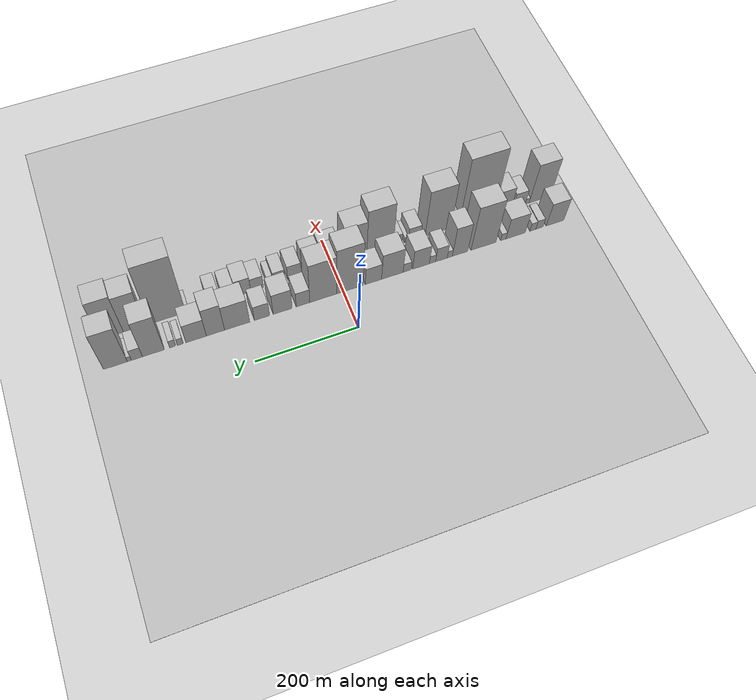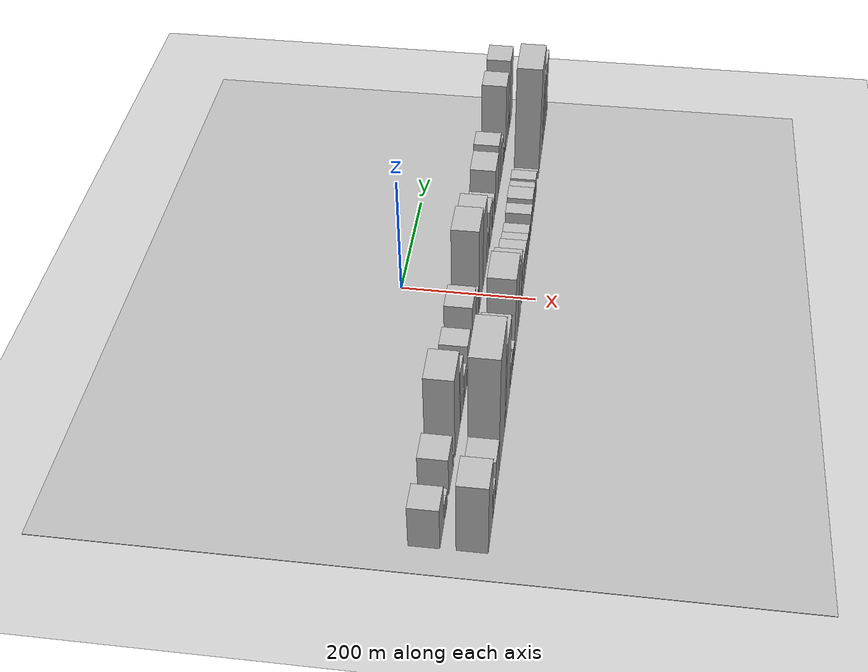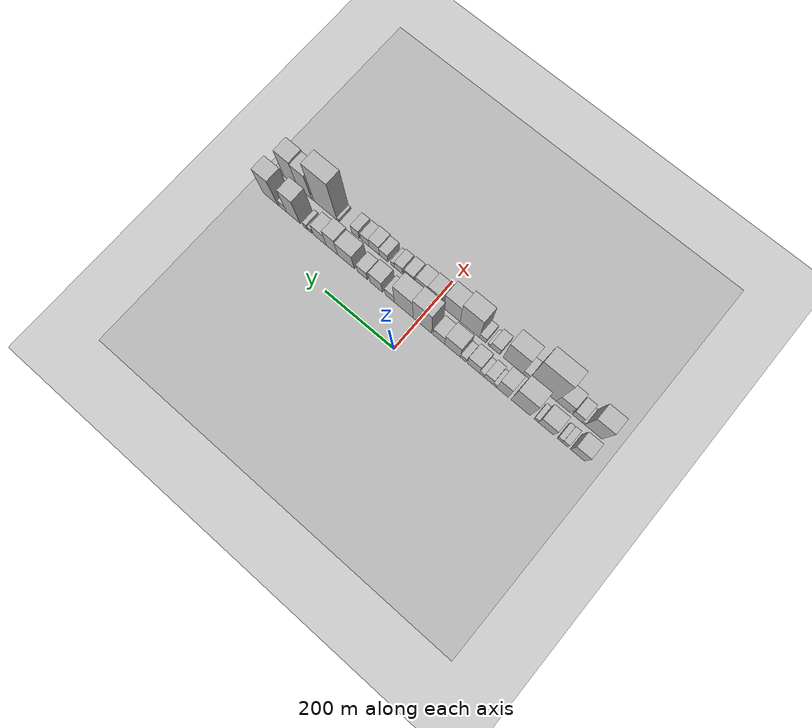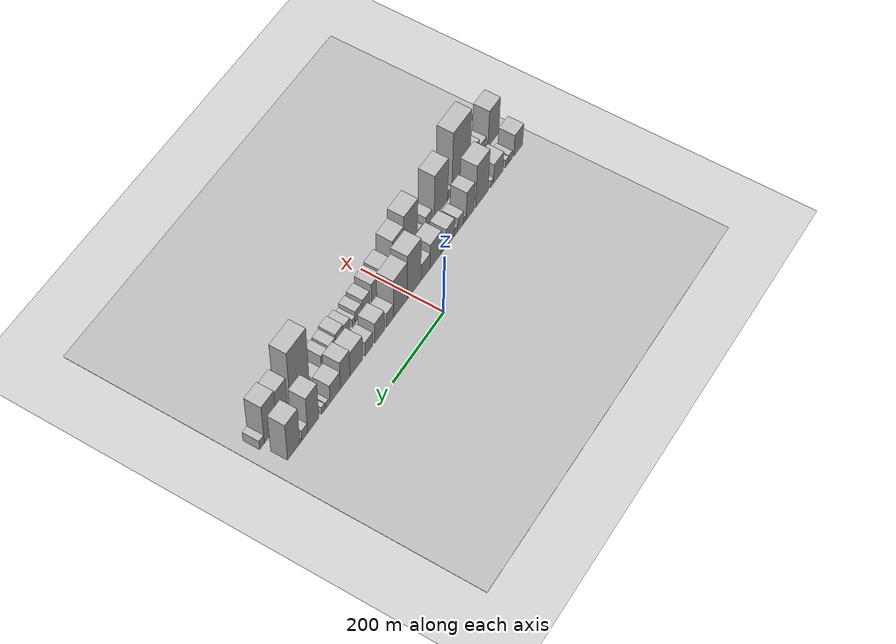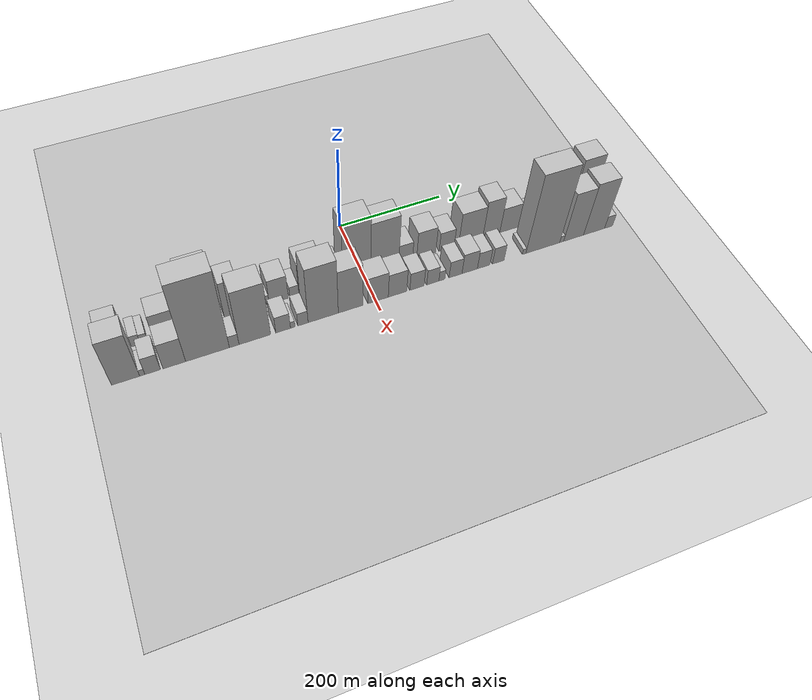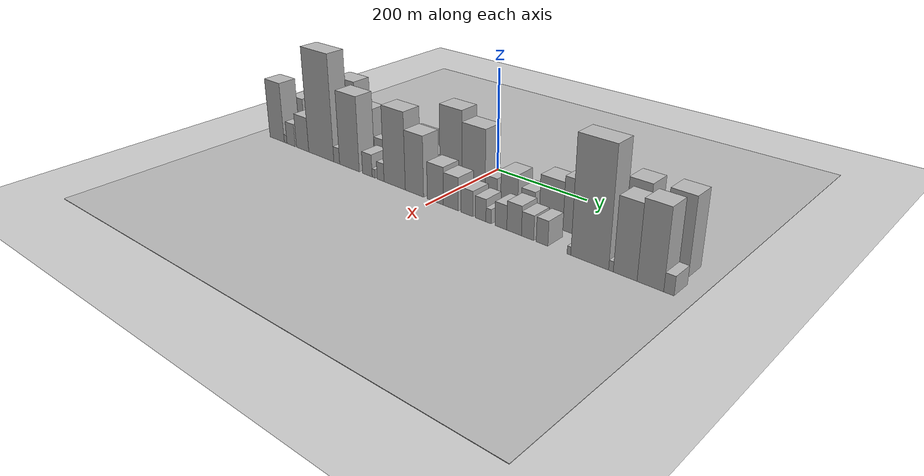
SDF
<sdf version="1.6">
 <world name="default">
  <include><name>ground_plane_1</name><uri>model://HANNAS_ground_plane</uri></include>
  <include>
   <name>ground_plane_2</name>
   <uri>model://HANNAS_ground_plane</uri>
   <pose>100 0 0  0 0 0</pose>
  </include>
  <model name="building_1">
   <static>1</static>
   <pose>100.0000 -440.9471 0 0.000000 0.000000 0.000000</pose>
   <link name="link">
    <pose>0 0 37.50 0 0 0</pose>
    <collision name="collision"><geometry><box><size>40.0000 38.1058 75.0000</size></box></geometry></collision>
    <visual name="visual">
     <cast_shadows>0</cast_shadows>
     <geometry><box><size>40.0000 38.1058 75.0000</size></box></geometry>
     <material>
      <script>
       <uri>model://HANNAS_wall/materials/scripts</uri>
       <uri>model://HANNAS_wall/materials/textures</uri>
       <name>vrc/HANNAS_wall</name>
      </script>
     </material>
    </visual>
   </link>
  </model>
  <model name="building_2">
   <static>1</static>
   <pose>100.0000 -407.1642 0 0.000000 0.000000 0.000000</pose>
   <link name="link">
    <pose>0 0 15.00 0 0 0</pose>
    <collision name="collision"><geometry><box><size>40.0000 15.4600 30.0000</size></box></geometry></collision>
    <visual name="visual">
     <cast_shadows>0</cast_shadows>
     <geometry><box><size>40.0000 15.4600 30.0000</size></box></geometry>
     <material>
      <script>
       <uri>model://HANNAS_wall/materials/scripts</uri>
       <uri>model://HANNAS_wall/materials/textures</uri>
       <name>vrc/HANNAS_wall</name>
      </script>
     </material>
    </visual>
   </link>
  </model>
  <model name="building_3">
   <static>1</static>
   <pose>100.0000 -393.0860 0 0.000000 0.000000 0.000000</pose>
   <link name="link">
    <pose>0 0 13.50 0 0 0</pose>
    <collision name="collision"><geometry><box><size>40.0000 12.6964 27.0000</size></box></geometry></collision>
    <visual name="visual">
     <cast_shadows>0</cast_shadows>
     <geometry><box><size>40.0000 12.6964 27.0000</size></box></geometry>
     <material>
      <script>
       <uri>model://HANNAS_wall/materials/scripts</uri>
       <uri>model://HANNAS_wall/materials/textures</uri>
       <name>vrc/HANNAS_wall</name>
      </script>
     </material>
    </visual>
   </link>
  </model>
  <model name="building_4">
   <static>1</static>
   <pose>100.0000 -356.1341 0 0.000000 0.000000 0.000000</pose>
   <link name="link">
    <pose>0 0 34.50 0 0 0</pose>
    <collision name="collision"><geometry><box><size>40.0000 41.2074 69.0000</size></box></geometry></collision>
    <visual name="visual">
     <cast_shadows>0</cast_shadows>
     <geometry><box><size>40.0000 41.2074 69.0000</size></box></geometry>
     <material>
      <script>
       <uri>model://HANNAS_wall/materials/scripts</uri>
       <uri>model://HANNAS_wall/materials/textures</uri>
       <name>vrc/HANNAS_wall</name>
      </script>
     </material>
    </visual>
   </link>
  </model>
  <model name="building_5">
   <static>1</static>
   <pose>100.0000 -329.7776 0 0.000000 0.000000 0.000000</pose>
   <link name="link">
    <pose>0 0 12.00 0 0 0</pose>
    <collision name="collision"><geometry><box><size>40.0000 11.5056 24.0000</size></box></geometry></collision>
    <visual name="visual">
     <cast_shadows>0</cast_shadows>
     <geometry><box><size>40.0000 11.5056 24.0000</size></box></geometry>
     <material>
      <script>
       <uri>model://HANNAS_wall/materials/scripts</uri>
       <uri>model://HANNAS_wall/materials/textures</uri>
       <name>vrc/HANNAS_wall</name>
      </script>
     </material>
    </visual>
   </link>
  </model>
  <model name="building_6">
   <static>1</static>
   <pose>100.0000 -287.7124 0 0.000000 0.000000 0.000000</pose>
   <link name="link">
    <pose>0 0 73.50 0 0 0</pose>
    <collision name="collision"><geometry><box><size>40.0000 52.6247 147.0000</size></box></geometry></collision>
    <visual name="visual">
     <cast_shadows>0</cast_shadows>
     <geometry><box><size>40.0000 52.6247 147.0000</size></box></geometry>
     <material>
      <script>
       <uri>model://HANNAS_wall/materials/scripts</uri>
       <uri>model://HANNAS_wall/materials/textures</uri>
       <name>vrc/HANNAS_wall</name>
      </script>
     </material>
    </visual>
   </link>
  </model>
  <model name="building_7">
   <static>1</static>
   <pose>100.0000 -238.3143 0 0.000000 0.000000 0.000000</pose>
   <link name="link">
    <pose>0 0 49.50 0 0 0</pose>
    <collision name="collision"><geometry><box><size>40.0000 32.1715 99.0000</size></box></geometry></collision>
    <visual name="visual">
     <cast_shadows>0</cast_shadows>
     <geometry><box><size>40.0000 32.1715 99.0000</size></box></geometry>
     <material>
      <script>
       <uri>model://HANNAS_wall/materials/scripts</uri>
       <uri>model://HANNAS_wall/materials/textures</uri>
       <name>vrc/HANNAS_wall</name>
      </script>
     </material>
    </visual>
   </link>
  </model>
  <model name="building_8">
   <static>1</static>
   <pose>100.0000 -216.9124 0 0.000000 0.000000 0.000000</pose>
   <link name="link">
    <pose>0 0 12.00 0 0 0</pose>
    <collision name="collision"><geometry><box><size>40.0000 10.6324 24.0000</size></box></geometry></collision>
    <visual name="visual">
     <cast_shadows>0</cast_shadows>
     <geometry><box><size>40.0000 10.6324 24.0000</size></box></geometry>
     <material>
      <script>
       <uri>model://HANNAS_wall/materials/scripts</uri>
       <uri>model://HANNAS_wall/materials/textures</uri>
       <name>vrc/HANNAS_wall</name>
      </script>
     </material>
    </visual>
   </link>
  </model>
  <model name="building_9">
   <static>1</static>
   <pose>100.0000 -199.5658 0 0.000000 0.000000 0.000000</pose>
   <link name="link">
    <pose>0 0 24.00 0 0 0</pose>
    <collision name="collision"><geometry><box><size>40.0000 24.0608 48.0000</size></box></geometry></collision>
    <visual name="visual">
     <cast_shadows>0</cast_shadows>
     <geometry><box><size>40.0000 24.0608 48.0000</size></box></geometry>
     <material>
      <script>
       <uri>model://HANNAS_wall/materials/scripts</uri>
       <uri>model://HANNAS_wall/materials/textures</uri>
       <name>vrc/HANNAS_wall</name>
      </script>
     </material>
    </visual>
   </link>
  </model>
  <model name="building_10">
   <static>1</static>
   <pose>100.0000 -180.9610 0 0.000000 0.000000 0.000000</pose>
   <link name="link">
    <pose>0 0 13.50 0 0 0</pose>
    <collision name="collision"><geometry><box><size>40.0000 13.1488 27.0000</size></box></geometry></collision>
    <visual name="visual">
     <cast_shadows>0</cast_shadows>
     <geometry><box><size>40.0000 13.1488 27.0000</size></box></geometry>
     <material>
      <script>
       <uri>model://HANNAS_wall/materials/scripts</uri>
       <uri>model://HANNAS_wall/materials/textures</uri>
       <name>vrc/HANNAS_wall</name>
      </script>
     </material>
    </visual>
   </link>
  </model>
  <model name="building_11">
   <static>1</static>
   <pose>100.0000 -157.1860 0 0.000000 0.000000 0.000000</pose>
   <link name="link">
    <pose>0 0 33.00 0 0 0</pose>
    <collision name="collision"><geometry><box><size>40.0000 34.4013 66.0000</size></box></geometry></collision>
    <visual name="visual">
     <cast_shadows>0</cast_shadows>
     <geometry><box><size>40.0000 34.4013 66.0000</size></box></geometry>
     <material>
      <script>
       <uri>model://HANNAS_wall/materials/scripts</uri>
       <uri>model://HANNAS_wall/materials/textures</uri>
       <name>vrc/HANNAS_wall</name>
      </script>
     </material>
    </visual>
   </link>
  </model>
  <model name="building_12">
   <static>1</static>
   <pose>100.0000 -128.7303 0 0.000000 0.000000 0.000000</pose>
   <link name="link">
    <pose>0 0 15.00 0 0 0</pose>
    <collision name="collision"><geometry><box><size>40.0000 16.5101 30.0000</size></box></geometry></collision>
    <visual name="visual">
     <cast_shadows>0</cast_shadows>
     <geometry><box><size>40.0000 16.5101 30.0000</size></box></geometry>
     <material>
      <script>
       <uri>model://HANNAS_wall/materials/scripts</uri>
       <uri>model://HANNAS_wall/materials/textures</uri>
       <name>vrc/HANNAS_wall</name>
      </script>
     </material>
    </visual>
   </link>
  </model>
  <model name="building_13">
   <static>1</static>
   <pose>100.0000 -98.5221 0 0.000000 0.000000 0.000000</pose>
   <link name="link">
    <pose>0 0 43.50 0 0 0</pose>
    <collision name="collision"><geometry><box><size>40.0000 43.9062 87.0000</size></box></geometry></collision>
    <visual name="visual">
     <cast_shadows>0</cast_shadows>
     <geometry><box><size>40.0000 43.9062 87.0000</size></box></geometry>
     <material>
      <script>
       <uri>model://HANNAS_wall/materials/scripts</uri>
       <uri>model://HANNAS_wall/materials/textures</uri>
       <name>vrc/HANNAS_wall</name>
      </script>
     </material>
    </visual>
   </link>
  </model>
  <model name="building_14">
   <static>1</static>
   <pose>100.0000 -60.0770 0 0.000000 0.000000 0.000000</pose>
   <link name="link">
    <pose>0 0 28.50 0 0 0</pose>
    <collision name="collision"><geometry><box><size>40.0000 32.9840 57.0000</size></box></geometry></collision>
    <visual name="visual">
     <cast_shadows>0</cast_shadows>
     <geometry><box><size>40.0000 32.9840 57.0000</size></box></geometry>
     <material>
      <script>
       <uri>model://HANNAS_wall/materials/scripts</uri>
       <uri>model://HANNAS_wall/materials/textures</uri>
       <name>vrc/HANNAS_wall</name>
      </script>
     </material>
    </visual>
   </link>
  </model>
  <model name="building_15">
   <static>1</static>
   <pose>100.0000 -13.1559 0 0.000000 0.000000 0.000000</pose>
   <link name="link">
    <pose>0 0 78.00 0 0 0</pose>
    <collision name="collision"><geometry><box><size>40.0000 52.8582 156.0000</size></box></geometry></collision>
    <visual name="visual">
     <cast_shadows>0</cast_shadows>
     <geometry><box><size>40.0000 52.8582 156.0000</size></box></geometry>
     <material>
      <script>
       <uri>model://HANNAS_wall/materials/scripts</uri>
       <uri>model://HANNAS_wall/materials/textures</uri>
       <name>vrc/HANNAS_wall</name>
      </script>
     </material>
    </visual>
   </link>
  </model>
  <model name="building_16">
   <static>1</static>
   <pose>100.0000 40.2340 0 0.000000 0.000000 0.000000</pose>
   <link name="link">
    <pose>0 0 67.50 0 0 0</pose>
    <collision name="collision"><geometry><box><size>40.0000 53.9217 135.0000</size></box></geometry></collision>
    <visual name="visual">
     <cast_shadows>0</cast_shadows>
     <geometry><box><size>40.0000 53.9217 135.0000</size></box></geometry>
     <material>
      <script>
       <uri>model://HANNAS_wall/materials/scripts</uri>
       <uri>model://HANNAS_wall/materials/textures</uri>
       <name>vrc/HANNAS_wall</name>
      </script>
     </material>
    </visual>
   </link>
  </model>
  <model name="building_17">
   <static>1</static>
   <pose>100.0000 80.6268 0 0.000000 0.000000 0.000000</pose>
   <link name="link">
    <pose>0 0 25.50 0 0 0</pose>
    <collision name="collision"><geometry><box><size>40.0000 26.8638 51.0000</size></box></geometry></collision>
    <visual name="visual">
     <cast_shadows>0</cast_shadows>
     <geometry><box><size>40.0000 26.8638 51.0000</size></box></geometry>
     <material>
      <script>
       <uri>model://HANNAS_wall/materials/scripts</uri>
       <uri>model://HANNAS_wall/materials/textures</uri>
       <name>vrc/HANNAS_wall</name>
      </script>
     </material>
    </visual>
   </link>
  </model>
  <model name="building_18">
   <static>1</static>
   <pose>100.0000 120.6621 0 0.000000 0.000000 0.000000</pose>
   <link name="link">
    <pose>0 0 36.00 0 0 0</pose>
    <collision name="collision"><geometry><box><size>40.0000 37.2068 72.0000</size></box></geometry></collision>
    <visual name="visual">
     <cast_shadows>0</cast_shadows>
     <geometry><box><size>40.0000 37.2068 72.0000</size></box></geometry>
     <material>
      <script>
       <uri>model://HANNAS_wall/materials/scripts</uri>
       <uri>model://HANNAS_wall/materials/textures</uri>
       <name>vrc/HANNAS_wall</name>
      </script>
     </material>
    </visual>
   </link>
  </model>
  <model name="building_19">
   <static>1</static>
   <pose>100.0000 161.0358 0 0.000000 0.000000 0.000000</pose>
   <link name="link">
    <pose>0 0 25.50 0 0 0</pose>
    <collision name="collision"><geometry><box><size>40.0000 29.5407 51.0000</size></box></geometry></collision>
    <visual name="visual">
     <cast_shadows>0</cast_shadows>
     <geometry><box><size>40.0000 29.5407 51.0000</size></box></geometry>
     <material>
      <script>
       <uri>model://HANNAS_wall/materials/scripts</uri>
       <uri>model://HANNAS_wall/materials/textures</uri>
       <name>vrc/HANNAS_wall</name>
      </script>
     </material>
    </visual>
   </link>
  </model>
  <model name="building_20">
   <static>1</static>
   <pose>100.0000 209.0318 0 0.000000 0.000000 0.000000</pose>
   <link name="link">
    <pose>0 0 43.50 0 0 0</pose>
    <collision name="collision"><geometry><box><size>40.0000 48.4513 87.0000</size></box></geometry></collision>
    <visual name="visual">
     <cast_shadows>0</cast_shadows>
     <geometry><box><size>40.0000 48.4513 87.0000</size></box></geometry>
     <material>
      <script>
       <uri>model://HANNAS_wall/materials/scripts</uri>
       <uri>model://HANNAS_wall/materials/textures</uri>
       <name>vrc/HANNAS_wall</name>
      </script>
     </material>
    </visual>
   </link>
  </model>
  <model name="building_21">
   <static>1</static>
   <pose>100.0000 250.5919 0 0.000000 0.000000 0.000000</pose>
   <link name="link">
    <pose>0 0 49.50 0 0 0</pose>
    <collision name="collision"><geometry><box><size>40.0000 34.6688 99.0000</size></box></geometry></collision>
    <visual name="visual">
     <cast_shadows>0</cast_shadows>
     <geometry><box><size>40.0000 34.6688 99.0000</size></box></geometry>
     <material>
      <script>
       <uri>model://HANNAS_wall/materials/scripts</uri>
       <uri>model://HANNAS_wall/materials/textures</uri>
       <name>vrc/HANNAS_wall</name>
      </script>
     </material>
    </visual>
   </link>
  </model>
  <model name="building_22">
   <static>1</static>
   <pose>100.0000 287.4327 0 0.000000 0.000000 0.000000</pose>
   <link name="link">
    <pose>0 0 33.00 0 0 0</pose>
    <collision name="collision"><geometry><box><size>40.0000 39.0128 66.0000</size></box></geometry></collision>
    <visual name="visual">
     <cast_shadows>0</cast_shadows>
     <geometry><box><size>40.0000 39.0128 66.0000</size></box></geometry>
     <material>
      <script>
       <uri>model://HANNAS_wall/materials/scripts</uri>
       <uri>model://HANNAS_wall/materials/textures</uri>
       <name>vrc/HANNAS_wall</name>
      </script>
     </material>
    </visual>
   </link>
  </model>
  <model name="building_23">
   <static>1</static>
   <pose>100.0000 317.5218 0 0.000000 0.000000 0.000000</pose>
   <link name="link">
    <pose>0 0 12.00 0 0 0</pose>
    <collision name="collision"><geometry><box><size>40.0000 11.1654 24.0000</size></box></geometry></collision>
    <visual name="visual">
     <cast_shadows>0</cast_shadows>
     <geometry><box><size>40.0000 11.1654 24.0000</size></box></geometry>
     <material>
      <script>
       <uri>model://HANNAS_wall/materials/scripts</uri>
       <uri>model://HANNAS_wall/materials/textures</uri>
       <name>vrc/HANNAS_wall</name>
      </script>
     </material>
    </visual>
   </link>
  </model>
  <model name="building_24">
   <static>1</static>
   <pose>100.0000 331.7526 0 0.000000 0.000000 0.000000</pose>
   <link name="link">
    <pose>0 0 13.50 0 0 0</pose>
    <collision name="collision"><geometry><box><size>40.0000 11.2961 27.0000</size></box></geometry></collision>
    <visual name="visual">
     <cast_shadows>0</cast_shadows>
     <geometry><box><size>40.0000 11.2961 27.0000</size></box></geometry>
     <material>
      <script>
       <uri>model://HANNAS_wall/materials/scripts</uri>
       <uri>model://HANNAS_wall/materials/textures</uri>
       <name>vrc/HANNAS_wall</name>
      </script>
     </material>
    </visual>
   </link>
  </model>
  <model name="building_25">
   <static>1</static>
   <pose>100.0000 367.8742 0 0.000000 0.000000 0.000000</pose>
   <link name="link">
    <pose>0 0 66.00 0 0 0</pose>
    <collision name="collision"><geometry><box><size>40.0000 40.9471 132.0000</size></box></geometry></collision>
    <visual name="visual">
     <cast_shadows>0</cast_shadows>
     <geometry><box><size>40.0000 40.9471 132.0000</size></box></geometry>
     <material>
      <script>
       <uri>model://HANNAS_wall/materials/scripts</uri>
       <uri>model://HANNAS_wall/materials/textures</uri>
       <name>vrc/HANNAS_wall</name>
      </script>
     </material>
    </visual>
   </link>
  </model>
  <model name="building_26">
   <static>1</static>
   <pose>100.0000 398.6790 0 0.000000 0.000000 0.000000</pose>
   <link name="link">
    <pose>0 0 19.50 0 0 0</pose>
    <collision name="collision"><geometry><box><size>40.0000 20.6626 39.0000</size></box></geometry></collision>
    <visual name="visual">
     <cast_shadows>0</cast_shadows>
     <geometry><box><size>40.0000 20.6626 39.0000</size></box></geometry>
     <material>
      <script>
       <uri>model://HANNAS_wall/materials/scripts</uri>
       <uri>model://HANNAS_wall/materials/textures</uri>
       <name>vrc/HANNAS_wall</name>
      </script>
     </material>
    </visual>
   </link>
  </model>
  <model name="building_27">
   <static>1</static>
   <pose>100.0000 412.6578 0 0.000000 0.000000 0.000000</pose>
   <link name="link">
    <pose>0 0 9.00 0 0 0</pose>
    <collision name="collision"><geometry><box><size>40.0000 7.2950 18.0000</size></box></geometry></collision>
    <visual name="visual">
     <cast_shadows>0</cast_shadows>
     <geometry><box><size>40.0000 7.2950 18.0000</size></box></geometry>
     <material>
      <script>
       <uri>model://HANNAS_wall/materials/scripts</uri>
       <uri>model://HANNAS_wall/materials/textures</uri>
       <name>vrc/HANNAS_wall</name>
      </script>
     </material>
    </visual>
   </link>
  </model>
  <model name="building_28">
   <static>1</static>
   <pose>100.0000 438.3759 0 0.000000 0.000000 0.000000</pose>
   <link name="link">
    <pose>0 0 67.50 0 0 0</pose>
    <collision name="collision"><geometry><box><size>40.0000 44.1412 135.0000</size></box></geometry></collision>
    <visual name="visual">
     <cast_shadows>0</cast_shadows>
     <geometry><box><size>40.0000 44.1412 135.0000</size></box></geometry>
     <material>
      <script>
       <uri>model://HANNAS_wall/materials/scripts</uri>
       <uri>model://HANNAS_wall/materials/textures</uri>
       <name>vrc/HANNAS_wall</name>
      </script>
     </material>
    </visual>
   </link>
  </model>
  <model name="building_29">
   <static>1</static>
   <pose>160.0000 -436.8983 0 0.000000 0.000000 0.000000</pose>
   <link name="link">
    <pose>0 0 63.00 0 0 0</pose>
    <collision name="collision"><geometry><box><size>40.0000 46.2034 126.0000</size></box></geometry></collision>
    <visual name="visual">
     <cast_shadows>0</cast_shadows>
     <geometry><box><size>40.0000 46.2034 126.0000</size></box></geometry>
     <material>
      <script>
       <uri>model://HANNAS_wall/materials/scripts</uri>
       <uri>model://HANNAS_wall/materials/textures</uri>
       <name>vrc/HANNAS_wall</name>
      </script>
     </material>
    </visual>
   </link>
  </model>
  <model name="building_30">
   <static>1</static>
   <pose>160.0000 -409.5213 0 0.000000 0.000000 0.000000</pose>
   <link name="link">
    <pose>0 0 9.00 0 0 0</pose>
    <collision name="collision"><geometry><box><size>40.0000 8.5506 18.0000</size></box></geometry></collision>
    <visual name="visual">
     <cast_shadows>0</cast_shadows>
     <geometry><box><size>40.0000 8.5506 18.0000</size></box></geometry>
     <material>
      <script>
       <uri>model://HANNAS_wall/materials/scripts</uri>
       <uri>model://HANNAS_wall/materials/textures</uri>
       <name>vrc/HANNAS_wall</name>
      </script>
     </material>
    </visual>
   </link>
  </model>
  <model name="building_31">
   <static>1</static>
   <pose>160.0000 -392.2651 0 0.000000 0.000000 0.000000</pose>
   <link name="link">
    <pose>0 0 24.00 0 0 0</pose>
    <collision name="collision"><geometry><box><size>40.0000 25.9618 48.0000</size></box></geometry></collision>
    <visual name="visual">
     <cast_shadows>0</cast_shadows>
     <geometry><box><size>40.0000 25.9618 48.0000</size></box></geometry>
     <material>
      <script>
       <uri>model://HANNAS_wall/materials/scripts</uri>
       <uri>model://HANNAS_wall/materials/textures</uri>
       <name>vrc/HANNAS_wall</name>
      </script>
     </material>
    </visual>
   </link>
  </model>
  <model name="building_32">
   <static>1</static>
   <pose>160.0000 -356.2159 0 0.000000 0.000000 0.000000</pose>
   <link name="link">
    <pose>0 0 36.00 0 0 0</pose>
    <collision name="collision"><geometry><box><size>40.0000 38.1365 72.0000</size></box></geometry></collision>
    <visual name="visual">
     <cast_shadows>0</cast_shadows>
     <geometry><box><size>40.0000 38.1365 72.0000</size></box></geometry>
     <material>
      <script>
       <uri>model://HANNAS_wall/materials/scripts</uri>
       <uri>model://HANNAS_wall/materials/textures</uri>
       <name>vrc/HANNAS_wall</name>
      </script>
     </material>
    </visual>
   </link>
  </model>
  <model name="building_33">
   <static>1</static>
   <pose>160.0000 -299.8775 0 0.000000 0.000000 0.000000</pose>
   <link name="link">
    <pose>0 0 108.00 0 0 0</pose>
    <collision name="collision"><geometry><box><size>40.0000 74.5404 216.0000</size></box></geometry></collision>
    <visual name="visual">
     <cast_shadows>0</cast_shadows>
     <geometry><box><size>40.0000 74.5404 216.0000</size></box></geometry>
     <material>
      <script>
       <uri>model://HANNAS_wall/materials/scripts</uri>
       <uri>model://HANNAS_wall/materials/textures</uri>
       <name>vrc/HANNAS_wall</name>
      </script>
     </material>
    </visual>
   </link>
  </model>
  <model name="building_34">
   <static>1</static>
   <pose>160.0000 -254.2492 0 0.000000 0.000000 0.000000</pose>
   <link name="link">
    <pose>0 0 16.50 0 0 0</pose>
    <collision name="collision"><geometry><box><size>40.0000 16.7161 33.0000</size></box></geometry></collision>
    <visual name="visual">
     <cast_shadows>0</cast_shadows>
     <geometry><box><size>40.0000 16.7161 33.0000</size></box></geometry>
     <material>
      <script>
       <uri>model://HANNAS_wall/materials/scripts</uri>
       <uri>model://HANNAS_wall/materials/textures</uri>
       <name>vrc/HANNAS_wall</name>
      </script>
     </material>
    </visual>
   </link>
  </model>
  <model name="building_35">
   <static>1</static>
   <pose>160.0000 -218.3147 0 0.000000 0.000000 0.000000</pose>
   <link name="link">
    <pose>0 0 75.00 0 0 0</pose>
    <collision name="collision"><geometry><box><size>40.0000 55.1529 150.0000</size></box></geometry></collision>
    <visual name="visual">
     <cast_shadows>0</cast_shadows>
     <geometry><box><size>40.0000 55.1529 150.0000</size></box></geometry>
     <material>
      <script>
       <uri>model://HANNAS_wall/materials/scripts</uri>
       <uri>model://HANNAS_wall/materials/textures</uri>
       <name>vrc/HANNAS_wall</name>
      </script>
     </material>
    </visual>
   </link>
  </model>
  <model name="building_36">
   <static>1</static>
   <pose>160.0000 -168.7086 0 0.000000 0.000000 0.000000</pose>
   <link name="link">
    <pose>0 0 22.50 0 0 0</pose>
    <collision name="collision"><geometry><box><size>40.0000 26.0593 45.0000</size></box></geometry></collision>
    <visual name="visual">
     <cast_shadows>0</cast_shadows>
     <geometry><box><size>40.0000 26.0593 45.0000</size></box></geometry>
     <material>
      <script>
       <uri>model://HANNAS_wall/materials/scripts</uri>
       <uri>model://HANNAS_wall/materials/textures</uri>
       <name>vrc/HANNAS_wall</name>
      </script>
     </material>
    </visual>
   </link>
  </model>
  <model name="building_37">
   <static>1</static>
   <pose>160.0000 -151.6115 0 0.000000 0.000000 0.000000</pose>
   <link name="link">
    <pose>0 0 9.00 0 0 0</pose>
    <collision name="collision"><geometry><box><size>40.0000 8.1348 18.0000</size></box></geometry></collision>
    <visual name="visual">
     <cast_shadows>0</cast_shadows>
     <geometry><box><size>40.0000 8.1348 18.0000</size></box></geometry>
     <material>
      <script>
       <uri>model://HANNAS_wall/materials/scripts</uri>
       <uri>model://HANNAS_wall/materials/textures</uri>
       <name>vrc/HANNAS_wall</name>
      </script>
     </material>
    </visual>
   </link>
  </model>
  <model name="building_38">
   <static>1</static>
   <pose>160.0000 -133.3779 0 0.000000 0.000000 0.000000</pose>
   <link name="link">
    <pose>0 0 18.00 0 0 0</pose>
    <collision name="collision"><geometry><box><size>40.0000 18.3324 36.0000</size></box></geometry></collision>
    <visual name="visual">
     <cast_shadows>0</cast_shadows>
     <geometry><box><size>40.0000 18.3324 36.0000</size></box></geometry>
     <material>
      <script>
       <uri>model://HANNAS_wall/materials/scripts</uri>
       <uri>model://HANNAS_wall/materials/textures</uri>
       <name>vrc/HANNAS_wall</name>
      </script>
     </material>
    </visual>
   </link>
  </model>
  <model name="building_39">
   <static>1</static>
   <pose>160.0000 -96.8766 0 0.000000 0.000000 0.000000</pose>
   <link name="link">
    <pose>0 0 75.00 0 0 0</pose>
    <collision name="collision"><geometry><box><size>40.0000 54.6703 150.0000</size></box></geometry></collision>
    <visual name="visual">
     <cast_shadows>0</cast_shadows>
     <geometry><box><size>40.0000 54.6703 150.0000</size></box></geometry>
     <material>
      <script>
       <uri>model://HANNAS_wall/materials/scripts</uri>
       <uri>model://HANNAS_wall/materials/textures</uri>
       <name>vrc/HANNAS_wall</name>
      </script>
     </material>
    </visual>
   </link>
  </model>
  <model name="building_40">
   <static>1</static>
   <pose>160.0000 -46.9079 0 0.000000 0.000000 0.000000</pose>
   <link name="link">
    <pose>0 0 58.50 0 0 0</pose>
    <collision name="collision"><geometry><box><size>40.0000 45.2671 117.0000</size></box></geometry></collision>
    <visual name="visual">
     <cast_shadows>0</cast_shadows>
     <geometry><box><size>40.0000 45.2671 117.0000</size></box></geometry>
     <material>
      <script>
       <uri>model://HANNAS_wall/materials/scripts</uri>
       <uri>model://HANNAS_wall/materials/textures</uri>
       <name>vrc/HANNAS_wall</name>
      </script>
     </material>
    </visual>
   </link>
  </model>
  <model name="building_41">
   <static>1</static>
   <pose>160.0000 3.7859 0 0.000000 0.000000 0.000000</pose>
   <link name="link">
    <pose>0 0 36.00 0 0 0</pose>
    <collision name="collision"><geometry><box><size>40.0000 38.1203 72.0000</size></box></geometry></collision>
    <visual name="visual">
     <cast_shadows>0</cast_shadows>
     <geometry><box><size>40.0000 38.1203 72.0000</size></box></geometry>
     <material>
      <script>
       <uri>model://HANNAS_wall/materials/scripts</uri>
       <uri>model://HANNAS_wall/materials/textures</uri>
       <name>vrc/HANNAS_wall</name>
      </script>
     </material>
    </visual>
   </link>
  </model>
  <model name="building_42">
   <static>1</static>
   <pose>160.0000 40.1442 0 0.000000 0.000000 0.000000</pose>
   <link name="link">
    <pose>0 0 31.50 0 0 0</pose>
    <collision name="collision"><geometry><box><size>40.0000 34.5963 63.0000</size></box></geometry></collision>
    <visual name="visual">
     <cast_shadows>0</cast_shadows>
     <geometry><box><size>40.0000 34.5963 63.0000</size></box></geometry>
     <material>
      <script>
       <uri>model://HANNAS_wall/materials/scripts</uri>
       <uri>model://HANNAS_wall/materials/textures</uri>
       <name>vrc/HANNAS_wall</name>
      </script>
     </material>
    </visual>
   </link>
  </model>
  <model name="building_43">
   <static>1</static>
   <pose>160.0000 76.9626 0 0.000000 0.000000 0.000000</pose>
   <link name="link">
    <pose>0 0 24.00 0 0 0</pose>
    <collision name="collision"><geometry><box><size>40.0000 27.0405 48.0000</size></box></geometry></collision>
    <visual name="visual">
     <cast_shadows>0</cast_shadows>
     <geometry><box><size>40.0000 27.0405 48.0000</size></box></geometry>
     <material>
      <script>
       <uri>model://HANNAS_wall/materials/scripts</uri>
       <uri>model://HANNAS_wall/materials/textures</uri>
       <name>vrc/HANNAS_wall</name>
      </script>
     </material>
    </visual>
   </link>
  </model>
  <model name="building_44">
   <static>1</static>
   <pose>160.0000 107.2112 0 0.000000 0.000000 0.000000</pose>
   <link name="link">
    <pose>0 0 21.00 0 0 0</pose>
    <collision name="collision"><geometry><box><size>40.0000 23.4568 42.0000</size></box></geometry></collision>
    <visual name="visual">
     <cast_shadows>0</cast_shadows>
     <geometry><box><size>40.0000 23.4568 42.0000</size></box></geometry>
     <material>
      <script>
       <uri>model://HANNAS_wall/materials/scripts</uri>
       <uri>model://HANNAS_wall/materials/textures</uri>
       <name>vrc/HANNAS_wall</name>
      </script>
     </material>
    </visual>
   </link>
  </model>
  <model name="building_45">
   <static>1</static>
   <pose>160.0000 124.7615 0 0.000000 0.000000 0.000000</pose>
   <link name="link">
    <pose>0 0 13.50 0 0 0</pose>
    <collision name="collision"><geometry><box><size>40.0000 11.6439 27.0000</size></box></geometry></collision>
    <visual name="visual">
     <cast_shadows>0</cast_shadows>
     <geometry><box><size>40.0000 11.6439 27.0000</size></box></geometry>
     <material>
      <script>
       <uri>model://HANNAS_wall/materials/scripts</uri>
       <uri>model://HANNAS_wall/materials/textures</uri>
       <name>vrc/HANNAS_wall</name>
      </script>
     </material>
    </visual>
   </link>
  </model>
  <model name="building_46">
   <static>1</static>
   <pose>160.0000 151.0525 0 0.000000 0.000000 0.000000</pose>
   <link name="link">
    <pose>0 0 22.50 0 0 0</pose>
    <collision name="collision"><geometry><box><size>40.0000 24.9380 45.0000</size></box></geometry></collision>
    <visual name="visual">
     <cast_shadows>0</cast_shadows>
     <geometry><box><size>40.0000 24.9380 45.0000</size></box></geometry>
     <material>
      <script>
       <uri>model://HANNAS_wall/materials/scripts</uri>
       <uri>model://HANNAS_wall/materials/textures</uri>
       <name>vrc/HANNAS_wall</name>
      </script>
     </material>
    </visual>
   </link>
  </model>
  <model name="building_47">
   <static>1</static>
   <pose>160.0000 178.6213 0 0.000000 0.000000 0.000000</pose>
   <link name="link">
    <pose>0 0 27.00 0 0 0</pose>
    <collision name="collision"><geometry><box><size>40.0000 30.1995 54.0000</size></box></geometry></collision>
    <visual name="visual">
     <cast_shadows>0</cast_shadows>
     <geometry><box><size>40.0000 30.1995 54.0000</size></box></geometry>
     <material>
      <script>
       <uri>model://HANNAS_wall/materials/scripts</uri>
       <uri>model://HANNAS_wall/materials/textures</uri>
       <name>vrc/HANNAS_wall</name>
      </script>
     </material>
    </visual>
   </link>
  </model>
  <model name="building_48">
   <static>1</static>
   <pose>160.0000 206.0925 0 0.000000 0.000000 0.000000</pose>
   <link name="link">
    <pose>0 0 22.50 0 0 0</pose>
    <collision name="collision"><geometry><box><size>40.0000 24.7428 45.0000</size></box></geometry></collision>
    <visual name="visual">
     <cast_shadows>0</cast_shadows>
     <geometry><box><size>40.0000 24.7428 45.0000</size></box></geometry>
     <material>
      <script>
       <uri>model://HANNAS_wall/materials/scripts</uri>
       <uri>model://HANNAS_wall/materials/textures</uri>
       <name>vrc/HANNAS_wall</name>
      </script>
     </material>
    </visual>
   </link>
  </model>
  <model name="building_49">
   <static>1</static>
   <pose>160.0000 235.0074 0 0.000000 0.000000 0.000000</pose>
   <link name="link">
    <pose>0 0 22.50 0 0 0</pose>
    <collision name="collision"><geometry><box><size>40.0000 23.0871 45.0000</size></box></geometry></collision>
    <visual name="visual">
     <cast_shadows>0</cast_shadows>
     <geometry><box><size>40.0000 23.0871 45.0000</size></box></geometry>
     <material>
      <script>
       <uri>model://HANNAS_wall/materials/scripts</uri>
       <uri>model://HANNAS_wall/materials/textures</uri>
       <name>vrc/HANNAS_wall</name>
      </script>
     </material>
    </visual>
   </link>
  </model>
  <model name="building_50">
   <static>1</static>
   <pose>160.0000 286.8950 0 0.000000 0.000000 0.000000</pose>
   <link name="link">
    <pose>0 0 7.50 0 0 0</pose>
    <collision name="collision"><geometry><box><size>40.0000 6.8960 15.0000</size></box></geometry></collision>
    <visual name="visual">
     <cast_shadows>0</cast_shadows>
     <geometry><box><size>40.0000 6.8960 15.0000</size></box></geometry>
     <material>
      <script>
       <uri>model://HANNAS_wall/materials/scripts</uri>
       <uri>model://HANNAS_wall/materials/textures</uri>
       <name>vrc/HANNAS_wall</name>
      </script>
     </material>
    </visual>
   </link>
  </model>
  <model name="building_51">
   <static>1</static>
   <pose>160.0000 324.9023 0 0.000000 0.000000 0.000000</pose>
   <link name="link">
    <pose>0 0 103.50 0 0 0</pose>
    <collision name="collision"><geometry><box><size>40.0000 69.1187 207.0000</size></box></geometry></collision>
    <visual name="visual">
     <cast_shadows>0</cast_shadows>
     <geometry><box><size>40.0000 69.1187 207.0000</size></box></geometry>
     <material>
      <script>
       <uri>model://HANNAS_wall/materials/scripts</uri>
       <uri>model://HANNAS_wall/materials/textures</uri>
       <name>vrc/HANNAS_wall</name>
      </script>
     </material>
    </visual>
   </link>
  </model>
  <model name="building_52">
   <static>1</static>
   <pose>160.0000 363.5517 0 0.000000 0.000000 0.000000</pose>
   <link name="link">
    <pose>0 0 9.00 0 0 0</pose>
    <collision name="collision"><geometry><box><size>40.0000 8.1802 18.0000</size></box></geometry></collision>
    <visual name="visual">
     <cast_shadows>0</cast_shadows>
     <geometry><box><size>40.0000 8.1802 18.0000</size></box></geometry>
     <material>
      <script>
       <uri>model://HANNAS_wall/materials/scripts</uri>
       <uri>model://HANNAS_wall/materials/textures</uri>
       <name>vrc/HANNAS_wall</name>
      </script>
     </material>
    </visual>
   </link>
  </model>
  <model name="building_53">
   <static>1</static>
   <pose>160.0000 388.1206 0 0.000000 0.000000 0.000000</pose>
   <link name="link">
    <pose>0 0 64.50 0 0 0</pose>
    <collision name="collision"><geometry><box><size>40.0000 40.9575 129.0000</size></box></geometry></collision>
    <visual name="visual">
     <cast_shadows>0</cast_shadows>
     <geometry><box><size>40.0000 40.9575 129.0000</size></box></geometry>
     <material>
      <script>
       <uri>model://HANNAS_wall/materials/scripts</uri>
       <uri>model://HANNAS_wall/materials/textures</uri>
       <name>vrc/HANNAS_wall</name>
      </script>
     </material>
    </visual>
   </link>
  </model>
  <model name="building_54">
   <static>1</static>
   <pose>160.0000 430.6865 0 0.000000 0.000000 0.000000</pose>
   <link name="link">
    <pose>0 0 69.00 0 0 0</pose>
    <collision name="collision"><geometry><box><size>40.0000 44.1742 138.0000</size></box></geometry></collision>
    <visual name="visual">
     <cast_shadows>0</cast_shadows>
     <geometry><box><size>40.0000 44.1742 138.0000</size></box></geometry>
     <material>
      <script>
       <uri>model://HANNAS_wall/materials/scripts</uri>
       <uri>model://HANNAS_wall/materials/textures</uri>
       <name>vrc/HANNAS_wall</name>
      </script>
     </material>
    </visual>
   </link>
  </model>
  <model name="building_55">
   <static>1</static>
   <pose>160.0000 461.1518 0 0.000000 0.000000 0.000000</pose>
   <link name="link">
    <pose>0 0 16.50 0 0 0</pose>
    <collision name="collision"><geometry><box><size>40.0000 16.7563 33.0000</size></box></geometry></collision>
    <visual name="visual">
     <cast_shadows>0</cast_shadows>
     <geometry><box><size>40.0000 16.7563 33.0000</size></box></geometry>
     <material>
      <script>
       <uri>model://HANNAS_wall/materials/scripts</uri>
       <uri>model://HANNAS_wall/materials/textures</uri>
       <name>vrc/HANNAS_wall</name>
      </script>
     </material>
    </visual>
   </link>
  </model>
 </world>
</sdf>
